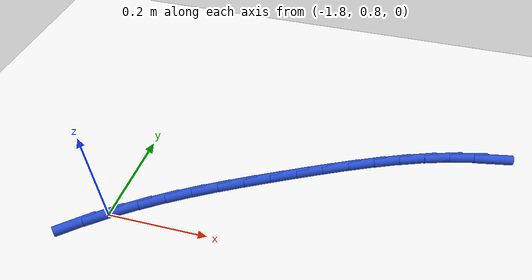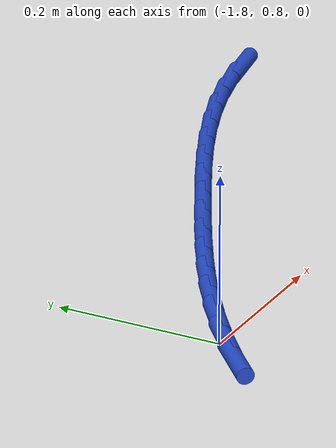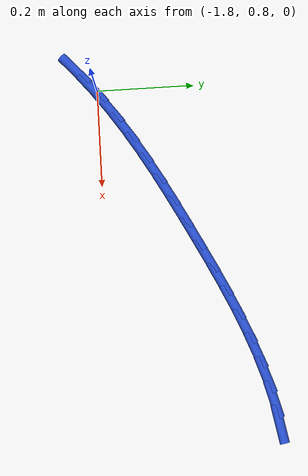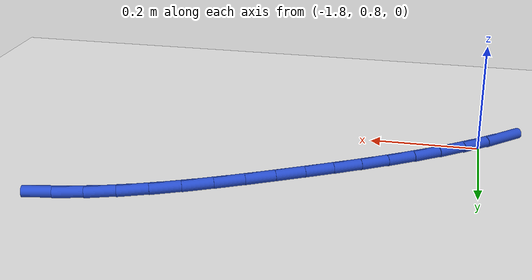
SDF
<sdf version="1.6">
 <world name="default">
  <model name="ground_plane">
   <static>1</static>
   <link name="link">
    <collision name="collision">
     <geometry><plane><normal>0 0 1</normal><size>100 100</size></plane></geometry>
     <surface><friction><ode><mu>100</mu><mu2>50</mu2></ode></friction></surface>
    </collision>
    <visual name="visual">
     <cast_shadows>0</cast_shadows>
     <geometry><plane><normal>0 0 1</normal><size>100 100</size></plane></geometry>
     <material>
      <script><uri>file://media/materials/scripts/gazebo.material</uri><name>Gazebo/WhiteGlow</name></script>
     </material>
    </visual>
   </link>
  </model>
  <model name="line">
   <link name="link_33">
    <pose>-1.0975431787815817 1.132039724470679 0.01 0 1.57 0.18188268553450915</pose>
    <collision name="collision">
     <geometry><cylinder><radius>0.01</radius><length>0.08</length></cylinder></geometry>
    </collision>
    <visual name="visual">
     <material>
      <script><name>Gazebo/Blue</name><uri>file://media/materials/scripts/gazebo.material</uri></script>
     </material>
     <geometry><cylinder><radius>0.01</radius><length>0.08</length></cylinder></geometry>
    </visual>
   </link>
   <link name="link_34">
    <pose>-1.1477167906168073 1.1228120333786094 0.01 0 1.57 0.2565424347452884</pose>
    <collision name="collision">
     <geometry><cylinder><radius>0.01</radius><length>0.08</length></cylinder></geometry>
    </collision>
    <visual name="visual">
     <material>
      <script><name>Gazebo/Blue</name><uri>file://media/materials/scripts/gazebo.material</uri></script>
     </material>
     <geometry><cylinder><radius>0.01</radius><length>0.08</length></cylinder></geometry>
    </visual>
   </link>
   <link name="link_35">
    <pose>-1.1979192826813463 1.109642781078285 0.01 0 1.57 0.3186196191181778</pose>
    <collision name="collision">
     <geometry><cylinder><radius>0.01</radius><length>0.08</length></cylinder></geometry>
    </collision>
    <visual name="visual">
     <material>
      <script><name>Gazebo/Blue</name><uri>file://media/materials/scripts/gazebo.material</uri></script>
     </material>
     <geometry><cylinder><radius>0.01</radius><length>0.08</length></cylinder></geometry>
    </visual>
   </link>
   <link name="link_36">
    <pose>-1.2480204209859356 1.0931165131921377 0.01 0 1.57 0.3692359196546286</pose>
    <collision name="collision">
     <geometry><cylinder><radius>0.01</radius><length>0.08</length></cylinder></geometry>
    </collision>
    <visual name="visual">
     <material>
      <script><name>Gazebo/Blue</name><uri>file://media/materials/scripts/gazebo.material</uri></script>
     </material>
     <geometry><cylinder><radius>0.01</radius><length>0.08</length></cylinder></geometry>
    </visual>
   </link>
   <link name="link_37">
    <pose>-1.297889971541314 1.0738177753426008 0.01 0 1.57 0.40947419782081707</pose>
    <collision name="collision">
     <geometry><cylinder><radius>0.01</radius><length>0.08</length></cylinder></geometry>
    </collision>
    <visual name="visual">
     <material>
      <script><name>Gazebo/Blue</name><uri>file://media/materials/scripts/gazebo.material</uri></script>
     </material>
     <geometry><cylinder><radius>0.01</radius><length>0.08</length></cylinder></geometry>
    </visual>
   </link>
   <link name="link_38">
    <pose>-1.3473977003582187 1.0523311131521067 0.01 0 1.57 0.44024073211449094</pose>
    <collision name="collision">
     <geometry><cylinder><radius>0.01</radius><length>0.08</length></cylinder></geometry>
    </collision>
    <visual name="visual">
     <material>
      <script><name>Gazebo/Blue</name><uri>file://media/materials/scripts/gazebo.material</uri></script>
     </material>
     <geometry><cylinder><radius>0.01</radius><length>0.08</length></cylinder></geometry>
    </visual>
   </link>
   <link name="link_39">
    <pose>-1.3964133734473883 1.0292410722430887 0.01 0 1.57 0.4621948251179589</pose>
    <collision name="collision">
     <geometry><cylinder><radius>0.01</radius><length>0.08</length></cylinder></geometry>
    </collision>
    <visual name="visual">
     <material>
      <script><name>Gazebo/Blue</name><uri>file://media/materials/scripts/gazebo.material</uri></script>
     </material>
     <geometry><cylinder><radius>0.01</radius><length>0.08</length></cylinder></geometry>
    </visual>
   </link>
   <link name="link_40">
    <pose>-1.4448067568195586 1.0051321982379793 0.01 0 1.57 0.47571015539162553</pose>
    <collision name="collision">
     <geometry><cylinder><radius>0.01</radius><length>0.08</length></cylinder></geometry>
    </collision>
    <visual name="visual">
     <material>
      <script><name>Gazebo/Blue</name><uri>file://media/materials/scripts/gazebo.material</uri></script>
     </material>
     <geometry><cylinder><radius>0.01</radius><length>0.08</length></cylinder></geometry>
    </visual>
   </link>
   <link name="link_41">
    <pose>-1.4924476164854694 0.9805890367592123 0.01 0 1.57 0.48285984642674556</pose>
    <collision name="collision">
     <geometry><cylinder><radius>0.01</radius><length>0.08</length></cylinder></geometry>
    </collision>
    <visual name="visual">
     <material>
      <script><name>Gazebo/Blue</name><uri>file://media/materials/scripts/gazebo.material</uri></script>
     </material>
     <geometry><cylinder><radius>0.01</radius><length>0.08</length></cylinder></geometry>
    </visual>
   </link>
   <link name="link_42">
    <pose>-1.5392263029000848 0.9560652523564459 0.01 0 1.57 0.49356486044707143</pose>
    <collision name="collision">
     <geometry><cylinder><radius>0.01</radius><length>0.08</length></cylinder></geometry>
    </collision>
    <visual name="visual">
     <material>
      <script><name>Gazebo/Blue</name><uri>file://media/materials/scripts/gazebo.material</uri></script>
     </material>
     <geometry><cylinder><radius>0.01</radius><length>0.08</length></cylinder></geometry>
    </visual>
   </link>
   <link name="link_43">
    <pose>-1.5851349226637312 0.9313675184184962 0.01 0 1.57 0.5109921084401414</pose>
    <collision name="collision">
     <geometry><cylinder><radius>0.01</radius><length>0.08</length></cylinder></geometry>
    </collision>
    <visual name="visual">
     <material>
      <script><name>Gazebo/Blue</name><uri>file://media/materials/scripts/gazebo.material</uri></script>
     </material>
     <geometry><cylinder><radius>0.01</radius><length>0.08</length></cylinder></geometry>
    </visual>
   </link>
   <link name="link_44">
    <pose>-1.6301969691945755 0.9061029430534934 0.01 0 1.57 0.5351002110447899</pose>
    <collision name="collision">
     <geometry><cylinder><radius>0.01</radius><length>0.08</length></cylinder></geometry>
    </collision>
    <visual name="visual">
     <material>
      <script><name>Gazebo/Blue</name><uri>file://media/materials/scripts/gazebo.material</uri></script>
     </material>
     <geometry><cylinder><radius>0.01</radius><length>0.08</length></cylinder></geometry>
    </visual>
   </link>
   <link name="link_45">
    <pose>-1.6744359448439707 0.8798785775701274 0.01 0 1.57 0.5656445083456669</pose>
    <collision name="collision">
     <geometry><cylinder><radius>0.01</radius><length>0.08</length></cylinder></geometry>
    </collision>
    <visual name="visual">
     <material>
      <script><name>Gazebo/Blue</name><uri>file://media/materials/scripts/gazebo.material</uri></script>
     </material>
     <geometry><cylinder><radius>0.01</radius><length>0.08</length></cylinder></geometry>
    </visual>
   </link>
   <link name="link_46">
    <pose>-1.717875351963271 0.8523014732770893 0.01 0 1.57 0.6021559430809539</pose>
    <collision name="collision">
     <geometry><cylinder><radius>0.01</radius><length>0.08</length></cylinder></geometry>
    </collision>
    <visual name="visual">
     <material>
      <script><name>Gazebo/Blue</name><uri>file://media/materials/scripts/gazebo.material</uri></script>
     </material>
     <geometry><cylinder><radius>0.01</radius><length>0.08</length></cylinder></geometry>
    </visual>
   </link>
   <link name="link_47">
    <pose>-1.7605386929038278 0.8229786814830686 0.01 0 1.57 0.6439338139300586</pose>
    <collision name="collision">
     <geometry><cylinder><radius>0.01</radius><length>0.08</length></cylinder></geometry>
    </collision>
    <visual name="visual">
     <material>
      <script><name>Gazebo/Blue</name><uri>file://media/materials/scripts/gazebo.material</uri></script>
     </material>
     <geometry><cylinder><radius>0.01</radius><length>0.08</length></cylinder></geometry>
    </visual>
   </link>
   <link name="link_48">
    <pose>-1.802449470016994 0.791517253496757 0.01 0 1.57 0.6896963462027056</pose>
    <collision name="collision">
     <geometry><cylinder><radius>0.01</radius><length>0.08</length></cylinder></geometry>
    </collision>
    <visual name="visual">
     <material>
      <script><name>Gazebo/Blue</name><uri>file://media/materials/scripts/gazebo.material</uri></script>
     </material>
     <geometry><cylinder><radius>0.01</radius><length>0.08</length></cylinder></geometry>
    </visual>
   </link>
   <link name="link_49">
    <pose>-1.8435464005817046 0.757619447473186 0.01 0 1.57 0.7376651764774959</pose>
    <collision name="collision">
     <geometry><cylinder><radius>0.01</radius><length>0.08</length></cylinder></geometry>
    </collision>
    <visual name="visual">
     <material>
      <script><name>Gazebo/Blue</name><uri>file://media/materials/scripts/gazebo.material</uri></script>
     </material>
     <geometry><cylinder><radius>0.01</radius><length>0.08</length></cylinder></geometry>
    </visual>
   </link>
  </model>
 </world>
</sdf>
